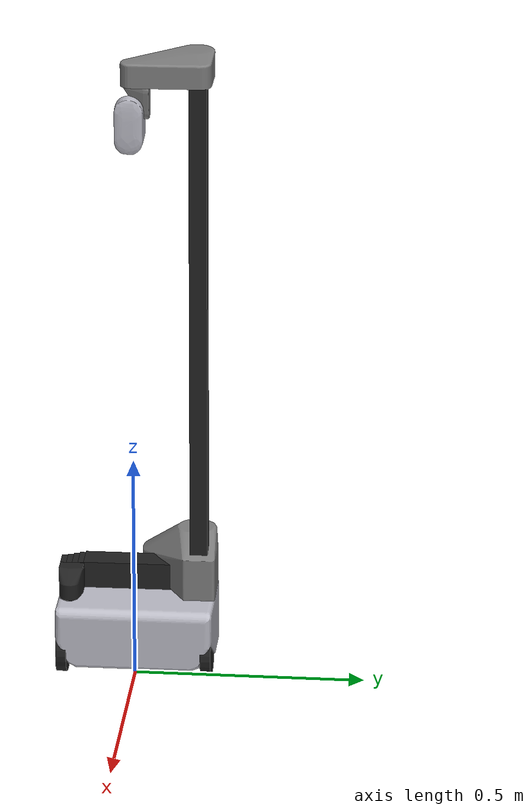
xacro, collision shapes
<?xml version="1.0"?>
<robot xmlns:xacro="http://www.ros.org/wiki/xacro" name="stretch_main">

  <xacro:property name="joint_damping" value="200"/>
  <xacro:property name="arm_damping" value="200"/>
  <xacro:property name="joint_friction" value="10"/>
  <xacro:property name="arm_friction" value="20"/>
  <xacro:property name="joint_spring_stiffness" value="0"/>
  <xacro:property name="joint_spring_reference" value="0"/>

  <link
    name="base_link">
    <inertial>
      <origin
        xyz="-0.109461304328163 -0.000741018909047708 0.0914915269429946"
        rpy="0 0 0" />
      <mass
        value="16.0" />
      <inertia
        ixx="0.00013"
        ixy="0"
        ixz="0"
        iyy="0.00012"
        iyz="0"
        izz="0.000218" />
    </inertial>
    <visual>
      <origin
        xyz="0 0 0"
        rpy="0 0 0" />
      <geometry>
        <mesh
          filename="package://stretch_description/meshes/base_link.STL" />
      </geometry>
      <material
        name="LightGray">
        <color
          rgba=".74 .74 .78 1" />
      </material>
    </visual>
    <collision>
      <origin
        xyz="0 0 0"
        rpy="0 0 0" />
      <geometry>
        <mesh
          filename="package://stretch_description/meshes/collision/base_link.STL" />
      </geometry>
    </collision>
  </link>

  <link
    name="link_right_wheel">
    <inertial>
      <origin
        xyz="0 0 0.0239581106165018"
        rpy="0 0 0" />
      <mass
        value="0.01" />
      <inertia
        ixx="0.001"
        ixy="0"
        ixz="0"
        iyy="0.001"
        iyz="0"
        izz="0.001" />
    </inertial>
    <visual>
      <origin
        xyz="0 0 0"
        rpy="0 0 0" />
      <geometry>
        <mesh
          filename="package://stretch_description/meshes/link_right_wheel.STL" />
      </geometry>
      <material
        name="">
        <color
          rgba=".13 .13 .13 1" />
      </material>
    </visual>
    <collision>
      <origin
        xyz="0 0 0"
        rpy="0 0 0" />
      <geometry>
          <cylinder radius="0.051" length="0.0225" />
      </geometry>
    </collision>
  </link>

  <joint
    name="joint_right_wheel"
    type="continuous">
    <origin
      xyz="-0.00300000000000034 -0.15765 0.0508000000000004"
      rpy="-${pi/2} 0 0 " />
    <parent
      link="base_link" />
    <child
      link="link_right_wheel" />
    <axis
      xyz="0 0 1" />
    <dynamics damping="${joint_damping}" friction="${joint_friction}" spring_reference="${joint_spring_reference}" spring_stiffness="{joint_spring_stiffness}"/>
  </joint>

  <link
    name="link_left_wheel">
    <inertial>
      <origin
        xyz="0 0 -0.0239581106165035"
        rpy="0 0 0" />
      <mass
        value="0.01" />
      <inertia
        ixx="0.001"
        ixy="0"
        ixz="0"
        iyy="0.001"
        iyz="0"
        izz="0.001" />
    </inertial>
    <visual>
      <origin
        xyz="0 0 0"
        rpy="0 0 0" />
      <geometry>
        <mesh
          filename="package://stretch_description/meshes/link_left_wheel.STL" />
      </geometry>
      <material
        name="">
        <color
          rgba=".13 .13 .13 1" />
      </material>
    </visual>
    <collision>
      <origin
        xyz="0 0 0"
        rpy="0 0 0" />
      <geometry>
          <cylinder radius="0.051" length="0.0225" />
      </geometry>
    </collision>
  </link>

  <joint
    name="joint_left_wheel"
    type="continuous">
    <origin
      xyz="-0.00300000000001899 0.15765 0.0507999999999994"
      rpy="-1.5707963267949 0 0" />
    <parent
      link="base_link" />
    <child
      link="link_left_wheel" />
    <axis
      xyz="0 0 1" />
    <dynamics damping="${joint_damping}" friction="${joint_friction}" spring_reference="${joint_spring_reference}" spring_stiffness="{joint_spring_stiffness}"/>
  </joint>

  <link name="caster_link">
    <collision>
      <geometry>
        <sphere radius="0.032"/>
      </geometry>
      <origin rpy="0 0 0" xyz="0 0 0"/>
      <surface>
        <friction>
          <ode>
            <mu>0</mu>
            <mu2>0</mu2>
            <slip1>1.0</slip1>
            <slip2>1.0</slip2>
          </ode>
        </friction>
      </surface>
    </collision>
    <visual>
      <origin
        xyz="0 0 0"
        rpy="0 0 0" />
      <geometry>
        <mesh
          filename="package://stretch_description/meshes/omni_wheel_m.STL" />
      </geometry>
      <material
        name="">
        <color
          rgba=".13 .13 .13 1" />
      </material>
    </visual>
    <inertial>
      <mass value="0.01" />
      <origin xyz="0 0 0" />
      <inertia
        ixx="0.001"
        ixy="0"
        ixz="0"
        iyy="0.001"
        iyz="0"
        izz="0.001" />
    </inertial>
  </link>

  <joint name="caster_joint" type="fixed">
    <parent link="base_link"/>
    <child link="caster_link"/>
    <origin xyz="-0.245 0.0 0.032" rpy="${-pi/2} 0 0"/>
    <axis xyz="0 0 1" />
  </joint>

  <link
    name="link_mast">
    <inertial>
      <origin
        xyz="0 0.7073971284176834 0"
        rpy="0 0 0" />
      <mass
        value="3" />
      <inertia
        ixx="0.000251"
        ixy="0"
        ixz="-0"
        iyy="0.000000"
        iyz="0"
        izz="0.000251" />
    </inertial>
    <visual>
      <origin
        xyz="0 0 0"
        rpy="0 0 0" />
      <geometry>
        <mesh
          filename="package://stretch_description/meshes/link_mast.STL" />
      </geometry>
      <material
        name="">
        <color
          rgba=".13 .13 .13 1" />
      </material>
    </visual>
    <collision>
      <origin
        xyz="0 0.7075 0"
        rpy="0 0 0" />
      <geometry>
        <box size="0.0384 1.2850 0.0384" />
      </geometry>
    </collision>
  </link>

  <joint
    name="joint_mast"
    type="fixed">
    <origin
      xyz="-0.07 0.134999999999998 0.0284000000000001"
      rpy="1.5707963267949 0 0.00925318926571245" />
    <parent
      link="base_link" />
    <child
      link="link_mast" />
    <axis
      xyz="0 0 0" />
  </joint>

  <link
    name="link_lift">
    <inertial>
      <origin
        xyz="-0.0547636346252869 0.0380939689802074 0.00933159404448308"
        rpy="0 0 0" />
      <mass
        value="0.5" />
      <inertia
        ixx="0.000567192946271367"
        ixy="-0.00024607534789508"
        ixz="-0.000128108442260574"
        iyy="0.00127108364478659"
        iyz="7.61916855070339E-06"
        izz="0.00137296635099006" />
    </inertial>
    <visual>
      <origin
        xyz="0 0 0"
        rpy="0 0 0" />
      <geometry>
        <mesh
          filename="package://stretch_description/meshes/link_lift.STL" />
      </geometry>
      <material
        name="">
        <color
          rgba=".5 .5 .5 1" />
      </material>
    </visual>
    <collision>
      <origin
        xyz="0 0 0"
        rpy="0 0 0" />
      <geometry>
        <mesh
          filename="package://stretch_description/meshes/collision/link_lift.STL" />
      </geometry>
    </collision>
  </link>

  <joint
    name="joint_lift"
    type="prismatic">
    <origin
      xyz="-0.0369217062323472 0.165471199999996 -0.000341653286793524"
      rpy="-${pi/2} ${pi/2} 0" />
    <parent
      link="link_mast" />
    <child
      link="link_lift" />
    <axis
	xyz="0 0 1" />
  <!-- for now: hand copied range_m: from lift: from ~/repos/stretch_fleet/stretch-re1-1001/stretch_re1_factory_params.yaml -->
  <!-- copied value did not reach the top of mesh model with GUI sliders and RViz -->
  <limit effort="100" lower="0.0" upper="1.1" velocity="0.3"/>
  <dynamics friction="40.0" damping="200.0"/>
  </joint>

  <link
    name="link_arm_l4">
    <inertial>
      <origin
        xyz="0 0 -0.0953252706040035"
        rpy="0 0 0" />
      <mass
        value="0.07" />
      <inertia
        ixx="0.000122002023066796"
        ixy="7.29593356230121E-13"
        ixz="9.63170353371061E-09"
        iyy="0.000122002023127152"
        iyz="-9.24154949889042E-09"
        izz="1.46043439809638E-12" />
    </inertial>
    <visual>
      <origin
        xyz="0 0 0"
        rpy="0 0 0" />
      <geometry>
        <mesh
          filename="package://stretch_description/meshes/link_arm_l4.STL" />
      </geometry>
      <material
        name="">
        <color
          rgba=".13 .13 .13 1" />
      </material>
    </visual>
    <collision>
      <origin
        xyz="0 0 -0.1112"
        rpy="0 0 0" />
      <geometry>
        <box size="0.0593 0.0592 0.2225" />
      </geometry>
    </collision>
  </link>

  <joint
    name="joint_arm_l4"
    type="fixed">
    <origin
      xyz="-0.25471 0 0"
      rpy="${pi/2} 0 -${pi/2}" />
    <parent
      link="link_lift" />
    <child
      link="link_arm_l4" />
    <axis
      xyz="0 0 0" />
    <dynamics damping="${arm_damping}" friction="${arm_friction}" />

  </joint>

  <link
    name="link_arm_l3">
    <inertial>
      <origin
        xyz="0 0 -0.0974069598289041"
        rpy="0 0 0" />
      <mass
        value="0.07" />
      <inertia
        ixx="0.001"
        ixy="0"
        ixz="0"
        iyy="0.001"
        iyz="0"
        izz="0.001" />
    </inertial>
    <visual>
      <origin
        xyz="0 0 0"
        rpy="0 0 0" />
      <geometry>
        <mesh
          filename="package://stretch_description/meshes/link_arm_l3.STL" />
      </geometry>
      <material
        name="">
        <color
          rgba=".13 .13 .13 1" />
      </material>
    </visual>
    <collision>
      <origin
        xyz="0 0 -0.1133"
        rpy="0 0 0" />
      <geometry>
        <box size="0.0552 0.0552 0.2265" />
      </geometry>
    </collision>
  </link>

  <joint
    name="joint_arm_l3"
    type="prismatic">
    <origin
      xyz="0 0 0.013"
      rpy="0 0 0" />
    <parent
      link="link_arm_l4" />
    <child
      link="link_arm_l3" />
    <axis
	xyz="0 0 1" />
    <limit effort="100" lower="0.0" upper="0.13" velocity="0.1"/>
    <dynamics damping="${arm_damping}" friction="${arm_friction}" />
  </joint>

  <link
    name="link_arm_l2">
    <inertial>
      <origin
        xyz="0 0 -0.097255883541891"
        rpy="0 0 0" />
      <mass
        value="0.06" />
      <inertia
        ixx="0.001"
        ixy="0"
        ixz="0"
        iyy="0.001"
        iyz="0"
        izz="0.001" />
    </inertial>
    <visual>
      <origin
        xyz="0 0 0"
        rpy="0 0 0" />
      <geometry>
        <mesh
          filename="package://stretch_description/meshes/link_arm_l2.STL" />
      </geometry>
      <material
        name="">
        <color
          rgba=".13 .13 .13 1" />
      </material>
    </visual>
    <collision>
      <origin
        xyz="0 0 -0.1133"
        rpy="0 0 0" />
      <geometry>
        <box size="0.0512 0.0512 0.2265" />
      </geometry>
    </collision>
  </link>

  <joint
    name="joint_arm_l2"
    type="prismatic">
    <origin
      xyz="0 0 0.013"
      rpy="0 0 0" />
    <parent
      link="link_arm_l3" />
    <child
      link="link_arm_l2" />
    <axis
	xyz="0 0 1" />
    <limit effort="100" lower="0.0" upper="0.13" velocity="0.1"/>
    <dynamics damping="${arm_damping}" friction="${arm_friction}" />
  </joint>

  <link
    name="link_arm_l1">
    <inertial>
      <origin
        xyz="0 0 -0.0969117032232756"
        rpy="0 0 0" />
      <mass
        value="0.05" />
      <inertia
        ixx="0.001"
        ixy="0"
        ixz="0"
        iyy="0.001"
        iyz="0"
        izz="0.001" />
    </inertial>
    <visual>
      <origin
        xyz="0 0 0"
        rpy="0 0 0" />
      <geometry>
        <mesh
          filename="package://stretch_description/meshes/link_arm_l1.STL" />
      </geometry>
      <material
        name="">
        <color
          rgba=".13 .13 .13 1" />
      </material>
    </visual>
    <collision>
      <origin
        xyz="0 0 -0.1133"
        rpy="0 0 0" />
      <geometry>
        <box size="0.0473 0.0472 0.2265"/>
      </geometry>
    </collision>
  </link>

  <joint
    name="joint_arm_l1"
    type="prismatic">
    <origin
      xyz="0 0 0.013"
      rpy="0 0 0" />
    <parent
      link="link_arm_l2" />
    <child
      link="link_arm_l1" />
    <axis
	xyz="0 0 1" />
    <limit effort="100" lower="0.0" upper="0.13" velocity="0.1"/>
    <dynamics damping="${arm_damping}" friction="${arm_friction}" />
  </joint>

  <link
    name="link_arm_l0">
    <inertial>
      <origin
        xyz="0.0230715049668191 -0.00195115833662818 -0.0360646347160285"
        rpy="0 0 0" />
      <mass
        value="0.10" />
      <inertia
        ixx="0.001"
        ixy="0"
        ixz="0"
        iyy="0.001"
        iyz="0"
        izz="0.001" />
    </inertial>
    <visual>
      <origin
        xyz="0 0 0"
        rpy="0 0 0" />
      <geometry>
        <mesh
          filename="package://stretch_description/meshes/link_arm_l0.STL" />
      </geometry>
      <material
        name="">
        <color
          rgba=".13 .13 .13 1" />
      </material>
    </visual>
    <collision>
      <origin
        xyz="0 0 0"
        rpy="0 0 0" />
      <geometry>
        <mesh
          filename="package://stretch_description/meshes/collision/link_arm_l0.STL" />
      </geometry>
    </collision>
    <collision>
      <origin
        xyz="0.0002 -0.0003 -0.0865"
        rpy="0 0 0" />
      <geometry>
        <box size="0.0457 0.0452 0.2265" />
      </geometry>
    </collision>
  </link>

  <joint
    name="joint_arm_l0"
    type="prismatic">
    <origin
      xyz="0 0 -0.0137499999999938"
      rpy="0 0 0" />
    <parent
      link="link_arm_l1" />
    <child
      link="link_arm_l0" />
    <axis
	xyz="0 0 1" />
    <limit effort="100" lower="0.0" upper="0.13" velocity="0.1"/>
    <dynamics damping="${arm_damping}" friction="${arm_friction}" />
  </joint>

  <link
    name="link_wrist_yaw">
    <inertial>
      <origin
        xyz="0 0 0.018946700595851"
        rpy="0 0 0" />
      <mass
        value="0.08" />
      <inertia
        ixx="0.001"
        ixy="0"
        ixz="0"
        iyy="0.001"
        iyz="0"
        izz="0.001" />
    </inertial>
    <visual>
      <origin
        xyz="0 0 0"
        rpy="0 0 0" />
      <geometry>
        <mesh
          filename="package://stretch_description/meshes/link_wrist_yaw.STL" />
      </geometry>
      <material
        name="">
        <color
	        rgba=".13 .13 .13 1" />
      </material>
    </visual>
    <collision>
      <origin
        xyz="0 0 0"
        rpy="0 0 0" />
      <geometry>
        <cylinder radius="0.015" length="0.0380" />
      </geometry>
    </collision>
  </link>

  <joint
    name="joint_wrist_yaw"
    type="revolute">
    <origin
      xyz="0.083 -0.03075 0"
      rpy="${pi/2} 0 0" />
    <parent
      link="link_arm_l0" />
    <child
      link="link_wrist_yaw" />
    <axis
      xyz="0 0 -1" />
    <!--
      stowed to front ~225 deg: 3.15159 x 1.25 = 3.9395
      using 4.0
      stowed to back ~100 deg:  100 / 180 x 3.14159 = 1.7453
      using -1.75
    -->
    <limit effort="100" lower="-1.75" upper="4.0" velocity="0.3"/>
  </joint>

  <link
    name="link_head">
    <inertial>
      <origin
        xyz="0.0372933550588956 0.045509432985552 0.0281136801213409"
        rpy="0 0 0" />
      <mass
        value="0.13" />
      <inertia
        ixx="0.001"
        ixy="0"
        ixz="0"
        iyy="0.001"
        iyz="0"
        izz="0.001" />
    </inertial>
    <visual>
      <origin
        xyz="0 0 0"
        rpy="0 0 0" />
      <geometry>
        <mesh
          filename="package://stretch_description/meshes/link_head.STL" />
      </geometry>
      <material
        name="">
        <color
          rgba=".5 .5 .5 1" />
      </material>
    </visual>
    <collision>
      <origin
        xyz="0 0 0"
        rpy="0 0 0" />
      <geometry>
        <mesh
          filename="package://stretch_description/meshes/collision/link_head.STL" />
      </geometry>
    </collision>
  </link>

  <joint
    name="joint_head"
    type="fixed">
    <origin
      xyz="0 1.33 0"
      rpy="${pi/2} -${pi/2} ${pi}" />
    <parent
      link="link_mast" />
    <child
      link="link_head" />
    <axis
      xyz="0 0 0" />
  </joint>

  <link
    name="link_head_pan">
    <inertial>
      <origin
        xyz="-0.00116200255310878 0.0130365621706306 0.00137629842298681"
        rpy="0 0 0" />
      <mass
        value="0.04" />
      <inertia
        ixx="0.001"
        ixy="0"
        ixz="0"
        iyy="0.001"
        iyz="0"
        izz="0.001" />
    </inertial>
    <visual>
      <origin
        xyz="0 0 0"
        rpy="0 0 0" />
      <geometry>
        <mesh
          filename="package://stretch_description/meshes/link_head_pan.STL" />
      </geometry>
      <material
        name="">
        <color
          rgba=".5 .5 .5 1" />
      </material>
    </visual>
    <collision>
      <origin
        xyz="0 0 0"
        rpy="0 0 0" />
      <geometry>
        <mesh
          filename="package://stretch_description/meshes/collision/link_head_pan.STL" />
      </geometry>
    </collision>
  </link>

  <joint
    name="joint_head_pan"
    type="revolute">
    <origin
      xyz="0.135 0.0731 -0.003"
      rpy="0 0 ${pi/2}" />
    <parent
      link="link_head" />
    <child
      link="link_head_pan" />
    <axis
	xyz="0 0 1" />
    <!-- unconstrained range for now -->
    <limit effort="100" lower="-3.9" upper="1.5" velocity="1.0"/>
  </joint>

  <link
    name="link_head_tilt">
    <inertial>
      <origin
        xyz="0.00920211049011871 -0.0279724762416447 0.0306580436227023"
        rpy="0 0 0" />
      <mass
        value="0.07" />
      <inertia
        ixx="0.001"
        ixy="0"
        ixz="0"
        iyy="0.001"
        iyz="0"
        izz="0.001" />
    </inertial>
    <visual>
      <origin
        xyz="0 0 0"
        rpy="0 0 0" />
      <geometry>
        <mesh
          filename="package://stretch_description/meshes/link_head_tilt.STL" />
      </geometry>
      <material
        name="">
        <color
          rgba=".74 .74 .78 1" />
      </material>
    </visual>
    <collision>
      <origin
        xyz="0 0 0"
        rpy="0 0 0" />
      <geometry>
        <mesh
          filename="package://stretch_description/meshes/collision/link_head_tilt.STL" />
      </geometry>
    </collision>
  </link>

  <joint
    name="joint_head_tilt"
    type="revolute">
    <origin
      xyz="-0.0013 0.027507 -0.053311"
      rpy="${pi/2} 0 0" />
    <parent
      link="link_head_pan" />
    <child
      link="link_head_tilt" />
    <axis
      xyz="0 0 1" />
    <!-- unconstrained range for now -->
    <limit effort="100" lower="-1.53" upper="0.79" velocity="1.0"/>
  </joint>

</robot>
